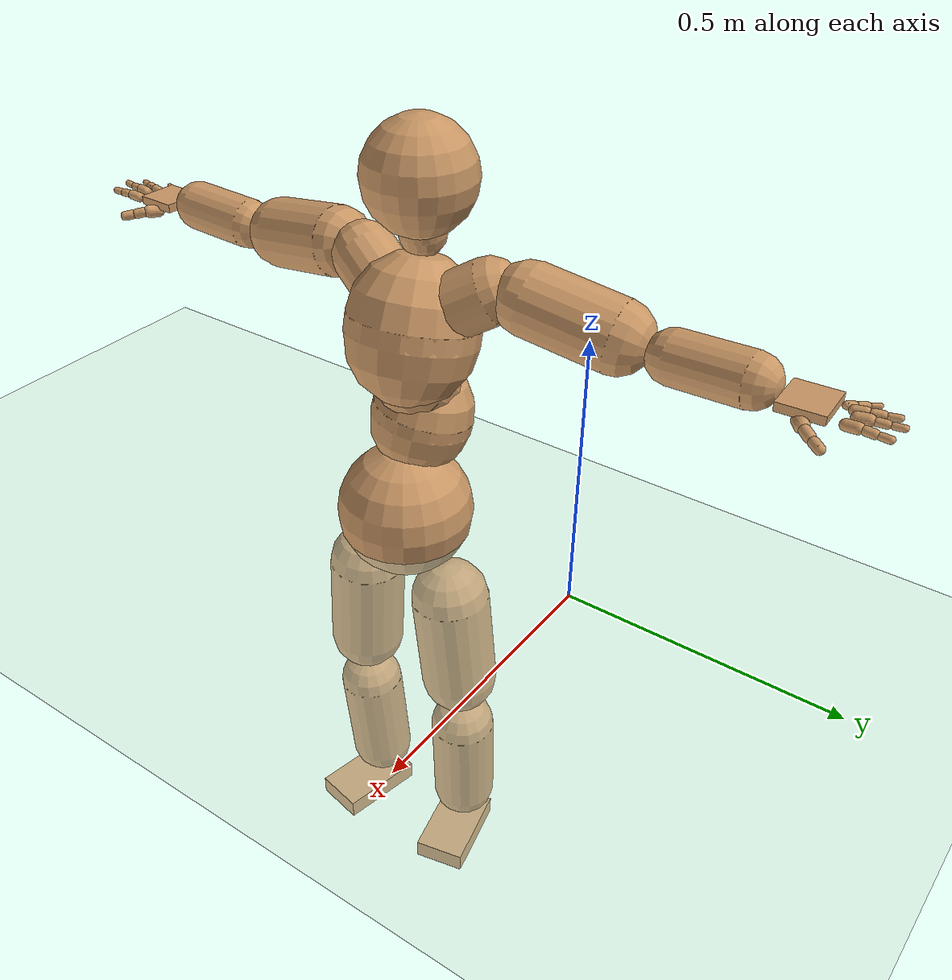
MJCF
<mujoco model="humanoid">
  <compiler coordinate="local" angle="radian"/>
  <default>
    <joint damping="0.0" armature="0.01" stiffness="0.0" limited="true"/>
    <geom conaffinity="1" condim="3" contype="7" margin="0.001" rgba="0.8 0.6 .4 1"/>
  </default>
  <asset>
    <texture type="skybox" builtin="gradient" rgb1=".4 .5 .6" rgb2="0 0 0" width="100" height="100"/>
    <texture builtin="flat" height="1278" mark="cross" markrgb="1 1 1" name="texgeom" random="0.01" rgb1="0.8 0.6 0.4" rgb2="0.8 0.6 0.4" type="cube" width="127"/>
    <texture builtin="checker" height="100" name="texplane" rgb1="0 0 0" rgb2="0.8 0.8 0.8" type="2d" width="100"/>
    <material name="MatPlane" reflectance="0.5" shininess="1" specular="1" texrepeat="60 60" texture="texplane"/>
    <material name="geom" texture="texgeom" texuniform="true"/>
  </asset>
  <worldbody>
    <light cutoff="100" diffuse="1 1 1" dir="-0 0 -1.3" directional="true" exponent="1" pos="0 0 1.3" specular=".1 .1 .1"/>
    <geom conaffinity="1" condim="3" name="floor" pos="0 0 0" rgba="0.8 0.9 0.8 1" size="100 100 .2" type="plane" material="MatPlane"/>
    <body name="Pelvis" pos="0.0011 -0.3627 0.04">
      <freejoint name="Pelvis"/>
      <geom type="sphere" contype="1" conaffinity="1" density="500" size="0.1290" pos="0.0000 0.0000 0.0000" name="Pelvis"/>
      <body name="L_Hip" pos="0.0027 0.0979 -0.0989">
        <joint name="L_Hip_x" type="hinge" pos="0 0 0" axis="1 0 0" stiffness="800" damping="80" armature="0.02" range="-180.0000 180.0000"/>
        <joint name="L_Hip_y" type="hinge" pos="0 0 0" axis="0 1 0" stiffness="800" damping="80" armature="0.02" range="-180.0000 180.0000"/>
        <joint name="L_Hip_z" type="hinge" pos="0 0 0" axis="0 0 1" stiffness="800" damping="80" armature="0.02" range="-180.0000 180.0000"/>
        <geom type="capsule" contype="1" conaffinity="1" density="500" fromto="-0.0038 0.0047 -0.0705 -0.0154 0.0189 -0.2820" size="0.0758" name="L_Hip"/>
        <body name="L_Knee" pos="-0.0192 0.0236 -0.3525">
          <joint name="L_Knee_x" type="hinge" pos="0 0 0" axis="1 0 0" stiffness="800" damping="80" armature="0.02" range="-180.0000 180.0000"/>
          <joint name="L_Knee_y" type="hinge" pos="0 0 0" axis="0 1 0" stiffness="800" damping="80" armature="0.02" range="-180.0000 180.0000"/>
          <joint name="L_Knee_z" type="hinge" pos="0 0 0" axis="0 0 1" stiffness="800" damping="80" armature="0.02" range="-180.0000 180.0000"/>
          <geom type="capsule" contype="1" conaffinity="1" density="500" fromto="-0.0066 -0.0029 -0.0749 -0.0262 -0.0116 -0.2996" size="0.0657" name="L_Knee"/>
          <body name="L_Ankle" pos="-0.0328 -0.0145 -0.3746">
            <joint name="L_Ankle_x" type="hinge" pos="0 0 0" axis="1 0 0" stiffness="800" damping="80" armature="0.02" range="-180.0000 180.0000"/>
            <joint name="L_Ankle_y" type="hinge" pos="0 0 0" axis="0 1 0" stiffness="800" damping="80" armature="0.02" range="-180.0000 180.0000"/>
            <joint name="L_Ankle_z" type="hinge" pos="0 0 0" axis="0 0 1" stiffness="800" damping="80" armature="0.02" range="-180.0000 180.0000"/>
            <geom type="box" contype="1" conaffinity="1" density="500" pos="0.0553 0.0126 -0.0195" size="0.0896 0.052 0.0208" quat="0.9937 0.0000 0.0000 0.1119" name="L_Ankle"/>
            <body name="L_Toe" pos="0.1106 0.0252 -0.039">
              <joint name="L_Toe_x" type="hinge" pos="0 0 0" axis="1 0 0" stiffness="500" damping="50" armature="0.02" range="-180.0000 180.0000"/>
              <joint name="L_Toe_y" type="hinge" pos="0 0 0" axis="0 1 0" stiffness="500" damping="50" armature="0.02" range="-180.0000 180.0000"/>
              <joint name="L_Toe_z" type="hinge" pos="0 0 0" axis="0 0 1" stiffness="500" damping="50" armature="0.02" range="-180.0000 180.0000"/>
              <geom type="box" contype="1" conaffinity="1" density="500" pos="0.0000 0.0000 0.0206" size="0.001 0.0025 0.0011" quat="0.9930 0.0000 0.0000 0.1183" name="L_Toe"/>
            </body>
          </body>
        </body>
      </body>
      <body name="R_Hip" pos="0.0016 -0.0973 -0.1044">
        <joint name="R_Hip_x" type="hinge" pos="0 0 0" axis="1 0 0" stiffness="800" damping="80" armature="0.02" range="-180.0000 180.0000"/>
        <joint name="R_Hip_y" type="hinge" pos="0 0 0" axis="0 1 0" stiffness="800" damping="80" armature="0.02" range="-180.0000 180.0000"/>
        <joint name="R_Hip_z" type="hinge" pos="0 0 0" axis="0 0 1" stiffness="800" damping="80" armature="0.02" range="-180.0000 180.0000"/>
        <geom type="capsule" contype="1" conaffinity="1" density="500" fromto="-0.0023 -0.0058 -0.0699 -0.0092 -0.0232 -0.2794" size="0.0756" name="R_Hip"/>
        <body name="R_Knee" pos="-0.0116 -0.029 -0.3493">
          <joint name="R_Knee_x" type="hinge" pos="0 0 0" axis="1 0 0" stiffness="800" damping="80" armature="0.02" range="-180.0000 180.0000"/>
          <joint name="R_Knee_y" type="hinge" pos="0 0 0" axis="0 1 0" stiffness="800" damping="80" armature="0.02" range="-180.0000 180.0000"/>
          <joint name="R_Knee_z" type="hinge" pos="0 0 0" axis="0 0 1" stiffness="800" damping="80" armature="0.02" range="-180.0000 180.0000"/>
          <geom type="capsule" contype="1" conaffinity="1" density="500" fromto="-0.0061 0.0018 -0.0731 -0.0244 0.0072 -0.2924" size="0.0657" name="R_Knee"/>
          <body name="R_Ankle" pos="-0.0305 0.009 -0.3655">
            <joint name="R_Ankle_x" type="hinge" pos="0 0 0" axis="1 0 0" stiffness="800" damping="80" armature="0.02" range="-180.0000 180.0000"/>
            <joint name="R_Ankle_y" type="hinge" pos="0 0 0" axis="0 1 0" stiffness="800" damping="80" armature="0.02" range="-180.0000 180.0000"/>
            <joint name="R_Ankle_z" type="hinge" pos="0 0 0" axis="0 0 1" stiffness="800" damping="80" armature="0.02" range="-180.0000 180.0000"/>
            <geom type="box" contype="1" conaffinity="1" density="500" pos="0.0524 -0.0103 -0.0209" size="0.0896 0.052 0.0208" quat="0.9953 0.0000 0.0000 -0.0968" name="R_Ankle"/>
            <body name="R_Toe" pos="0.1049 -0.0206 -0.0419">
              <joint name="R_Toe_x" type="hinge" pos="0 0 0" axis="1 0 0" stiffness="500" damping="50" armature="0.02" range="-180.0000 180.0000"/>
              <joint name="R_Toe_y" type="hinge" pos="0 0 0" axis="0 1 0" stiffness="500" damping="50" armature="0.02" range="-180.0000 180.0000"/>
              <joint name="R_Toe_z" type="hinge" pos="0 0 0" axis="0 0 1" stiffness="500" damping="50" armature="0.02" range="-180.0000 180.0000"/>
              <geom type="box" contype="1" conaffinity="1" density="500" pos="0.0000 0.0000 0.0220" size="0.001 0.0025 0.0011" quat="0.9963 0.0000 0.0000 -0.0860" name="R_Toe"/>
            </body>
          </body>
        </body>
      </body>
      <body name="Torso" pos="-0.0405 -0.0074 0.1188">
        <joint name="Torso_x" type="hinge" pos="0 0 0" axis="1 0 0" stiffness="1000" damping="100" armature="0.02" range="-180.0000 180.0000"/>
        <joint name="Torso_y" type="hinge" pos="0 0 0" axis="0 1 0" stiffness="1000" damping="100" armature="0.02" range="-180.0000 180.0000"/>
        <joint name="Torso_z" type="hinge" pos="0 0 0" axis="0 0 1" stiffness="1000" damping="100" armature="0.02" range="-180.0000 180.0000"/>
        <geom type="capsule" contype="1" conaffinity="1" density="500" fromto="-0.0163 0.0099 0.0694 -0.0109 0.0066 0.0463" size="0.0945" name="Torso"/>
        <body name="Spine" pos="-0.0271 0.0164 0.1156">
          <joint name="Spine_x" type="hinge" pos="0 0 0" axis="1 0 0" stiffness="1000" damping="100" armature="0.02" range="-180.0000 180.0000"/>
          <joint name="Spine_y" type="hinge" pos="0 0 0" axis="0 1 0" stiffness="1000" damping="100" armature="0.02" range="-180.0000 180.0000"/>
          <joint name="Spine_z" type="hinge" pos="0 0 0" axis="0 0 1" stiffness="1000" damping="100" armature="0.02" range="-180.0000 180.0000"/>
          <geom type="capsule" contype="1" conaffinity="1" density="500" fromto="0.0317 -0.0059 0.0263 0.0211 -0.0039 0.0175" size="0.0747" name="Spine"/>
          <body name="Chest" pos="0.0528 -0.0098 0.0438">
            <joint name="Chest_x" type="hinge" pos="0 0 0" axis="1 0 0" stiffness="1000" damping="100" armature="0.02" range="-180.0000 180.0000"/>
            <joint name="Chest_y" type="hinge" pos="0 0 0" axis="0 1 0" stiffness="1000" damping="100" armature="0.02" range="-180.0000 180.0000"/>
            <joint name="Chest_z" type="hinge" pos="0 0 0" axis="0 0 1" stiffness="1000" damping="100" armature="0.02" range="-180.0000 180.0000"/>
            <geom type="capsule" contype="1" conaffinity="1" density="500" fromto="-0.0262 -0.0020 0.0929 -0.0175 -0.0013 0.0619" size="0.1204" name="Chest"/>
            <body name="Neck" pos="-0.0629 -0.0068 0.2142">
              <joint name="Neck_x" type="hinge" pos="0 0 0" axis="1 0 0" stiffness="500" damping="50" armature="0.02" range="-180.0000 180.0000"/>
              <joint name="Neck_y" type="hinge" pos="0 0 0" axis="0 1 0" stiffness="500" damping="50" armature="0.02" range="-180.0000 180.0000"/>
              <joint name="Neck_z" type="hinge" pos="0 0 0" axis="0 0 1" stiffness="500" damping="50" armature="0.02" range="-180.0000 180.0000"/>
              <geom type="capsule" contype="1" conaffinity="1" density="500" fromto="0.0041 0.0019 0.0252 0.0165 0.0077 0.1009" size="0.0424" name="Neck"/>
              <body name="Head" pos="0.0207 0.0096 0.1261">
                <joint name="Head_x" type="hinge" pos="0 0 0" axis="1 0 0" stiffness="500" damping="50" armature="0.02" range="-180.0000 180.0000"/>
                <joint name="Head_y" type="hinge" pos="0 0 0" axis="0 1 0" stiffness="500" damping="50" armature="0.02" range="-180.0000 180.0000"/>
                <joint name="Head_z" type="hinge" pos="0 0 0" axis="0 0 1" stiffness="500" damping="50" armature="0.02" range="-180.0000 180.0000"/>
                <geom type="sphere" contype="1" conaffinity="1" density="500" size="0.0994" pos="0.0000 0.0000 0.0000" name="Head"/>
              </body>
            </body>
            <body name="L_Thorax" pos="-0.0297 0.0576 0.1271">
              <joint name="L_Thorax_x" type="hinge" pos="0 0 0" axis="1 0 0" stiffness="500" damping="50" armature="0.02" range="-180.0000 180.0000"/>
              <joint name="L_Thorax_y" type="hinge" pos="0 0 0" axis="0 1 0" stiffness="500" damping="50" armature="0.02" range="-180.0000 180.0000"/>
              <joint name="L_Thorax_z" type="hinge" pos="0 0 0" axis="0 0 1" stiffness="500" damping="50" armature="0.02" range="-180.0000 180.0000"/>
              <geom type="capsule" contype="1" conaffinity="1" density="500" fromto="-0.0081 0.0177 0.0102 -0.0324 0.0706 0.0409" size="0.0585" name="L_Thorax"/>
              <body name="L_Shoulder" pos="-0.0405 0.0883 0.0511">
                <joint name="L_Shoulder_x" type="hinge" pos="0 0 0" axis="1 0 0" stiffness="500" damping="50" armature="0.02" range="-180.0000 180.0000"/>
                <joint name="L_Shoulder_y" type="hinge" pos="0 0 0" axis="0 1 0" stiffness="500" damping="50" armature="0.02" range="-180.0000 180.0000"/>
                <joint name="L_Shoulder_z" type="hinge" pos="0 0 0" axis="0 0 1" stiffness="500" damping="50" armature="0.02" range="-180.0000 180.0000"/>
                <geom type="capsule" contype="1" conaffinity="1" density="500" fromto="-0.0065 0.0518 -0.0095 -0.0260 0.2070 -0.0380" size="0.0638" name="L_Shoulder"/>
                <body name="L_Elbow" pos="-0.0325 0.2588 -0.0475">
                  <joint name="L_Elbow_x" type="hinge" pos="0 0 0" axis="1 0 0" stiffness="500" damping="50" armature="0.02" range="-720.0000 720.0000"/>
                  <joint name="L_Elbow_y" type="hinge" pos="0 0 0" axis="0 1 0" stiffness="500" damping="50" armature="0.02" range="-720.0000 720.0000"/>
                  <joint name="L_Elbow_z" type="hinge" pos="0 0 0" axis="0 0 1" stiffness="500" damping="50" armature="0.02" range="-720.0000 720.0000"/>
                  <geom type="capsule" contype="1" conaffinity="1" density="500" fromto="0.0014 0.0448 0.0019 0.0056 0.1791 0.0078" size="0.0464" name="L_Elbow"/>
                  <body name="L_Wrist" pos="0.007 0.2239 0.0097">
                    <joint name="L_Wrist_x" type="hinge" pos="0 0 0" axis="1 0 0" stiffness="300" damping="30" armature="0.02" range="-180.0000 180.0000"/>
                    <joint name="L_Wrist_y" type="hinge" pos="0 0 0" axis="0 1 0" stiffness="300" damping="30" armature="0.02" range="-180.0000 180.0000"/>
                    <joint name="L_Wrist_z" type="hinge" pos="0 0 0" axis="0 0 1" stiffness="300" damping="30" armature="0.02" range="-180.0000 180.0000"/>
                    <geom type="box" contype="1" conaffinity="1" density="500" pos="-0.0023 0.0433 -0.0081" size="0.0395 0.0419 0.0079" quat="0.7259 0.0000 0.0000 -0.6878" name="L_Wrist"/>
                    <body name="L_Index1" pos="0.0205 0.1019 -0.0133">
                      <joint name="L_Index1_x" type="hinge" pos="0 0 0" axis="1 0 0" stiffness="100" damping="10" armature="0.02" range="-180.0000 180.0000"/>
                      <joint name="L_Index1_y" type="hinge" pos="0 0 0" axis="0 1 0" stiffness="100" damping="10" armature="0.02" range="-180.0000 180.0000"/>
                      <joint name="L_Index1_z" type="hinge" pos="0 0 0" axis="0 0 1" stiffness="100" damping="10" armature="0.02" range="-180.0000 180.0000"/>
                      <geom type="capsule" contype="1" conaffinity="1" density="500" fromto="0.0005 0.0063 0.0006 0.0022 0.0253 0.0025" size="0.0094" name="L_Index1"/>
                      <body name="L_Index2" pos="0.0027 0.0316 0.0031">
                        <joint name="L_Index2_x" type="hinge" pos="0 0 0" axis="1 0 0" stiffness="100" damping="10" armature="0.02" range="-180.0000 180.0000"/>
                        <joint name="L_Index2_y" type="hinge" pos="0 0 0" axis="0 1 0" stiffness="100" damping="10" armature="0.02" range="-180.0000 180.0000"/>
                        <joint name="L_Index2_z" type="hinge" pos="0 0 0" axis="0 0 1" stiffness="100" damping="10" armature="0.02" range="-180.0000 180.0000"/>
                        <geom type="capsule" contype="1" conaffinity="1" density="500" fromto="0.0001 0.0044 -0.0003 0.0002 0.0178 -0.0011" size="0.0077" name="L_Index2"/>
                        <body name="L_Index3" pos="0.0003 0.0222 -0.0013">
                          <joint name="L_Index3_x" type="hinge" pos="0 0 0" axis="1 0 0" stiffness="100" damping="10" armature="0.02" range="-180.0000 180.0000"/>
                          <joint name="L_Index3_y" type="hinge" pos="0 0 0" axis="0 1 0" stiffness="100" damping="10" armature="0.02" range="-180.0000 180.0000"/>
                          <joint name="L_Index3_z" type="hinge" pos="0 0 0" axis="0 0 1" stiffness="100" damping="10" armature="0.02" range="-180.0000 180.0000"/>
                          <geom type="capsule" contype="1" conaffinity="1" density="500" fromto="0.0005 0.0048 0.0001 0.0018 0.0194 0.0005" size="0.0063" name="L_Index3"/>
                        </body>
                      </body>
                    </body>
                    <body name="L_Middle1" pos="-0.0028 0.109 -0.0108">
                      <joint name="L_Middle1_x" type="hinge" pos="0 0 0" axis="1 0 0" stiffness="100" damping="10" armature="0.02" range="-180.0000 180.0000"/>
                      <joint name="L_Middle1_y" type="hinge" pos="0 0 0" axis="0 1 0" stiffness="100" damping="10" armature="0.02" range="-180.0000 180.0000"/>
                      <joint name="L_Middle1_z" type="hinge" pos="0 0 0" axis="0 0 1" stiffness="100" damping="10" armature="0.02" range="-180.0000 180.0000"/>
                      <geom type="capsule" contype="1" conaffinity="1" density="500" fromto="-0.0007 0.0060 0.0004 -0.0030 0.0239 0.0014" size="0.0098" name="L_Middle1"/>
                      <body name="L_Middle2" pos="-0.0037 0.0299 0.0018">
                        <joint name="L_Middle2_x" type="hinge" pos="0 0 0" axis="1 0 0" stiffness="100" damping="10" armature="0.02" range="-180.0000 180.0000"/>
                        <joint name="L_Middle2_y" type="hinge" pos="0 0 0" axis="0 1 0" stiffness="100" damping="10" armature="0.02" range="-180.0000 180.0000"/>
                        <joint name="L_Middle2_z" type="hinge" pos="0 0 0" axis="0 0 1" stiffness="100" damping="10" armature="0.02" range="-180.0000 180.0000"/>
                        <geom type="capsule" contype="1" conaffinity="1" density="500" fromto="-0.0007 0.0046 -0.0001 -0.0029 0.0183 -0.0005" size="0.007" name="L_Middle2"/>
                        <body name="L_Middle3" pos="-0.0037 0.0229 -0.0006">
                          <joint name="L_Middle3_x" type="hinge" pos="0 0 0" axis="1 0 0" stiffness="100" damping="10" armature="0.02" range="-180.0000 180.0000"/>
                          <joint name="L_Middle3_y" type="hinge" pos="0 0 0" axis="0 1 0" stiffness="100" damping="10" armature="0.02" range="-180.0000 180.0000"/>
                          <joint name="L_Middle3_z" type="hinge" pos="0 0 0" axis="0 0 1" stiffness="100" damping="10" armature="0.02" range="-180.0000 180.0000"/>
                          <geom type="capsule" contype="1" conaffinity="1" density="500" fromto="-0.0003 0.0050 0.0003 -0.0013 0.0199 0.0011" size="0.0057" name="L_Middle3"/>
                        </body>
                      </body>
                    </body>
                    <body name="L_Pinky1" pos="-0.042 0.0836 -0.0196">
                      <joint name="L_Pinky1_x" type="hinge" pos="0 0 0" axis="1 0 0" stiffness="100" damping="10" armature="0.02" range="-180.0000 180.0000"/>
                      <joint name="L_Pinky1_y" type="hinge" pos="0 0 0" axis="0 1 0" stiffness="100" damping="10" armature="0.02" range="-180.0000 180.0000"/>
                      <joint name="L_Pinky1_z" type="hinge" pos="0 0 0" axis="0 0 1" stiffness="100" damping="10" armature="0.02" range="-180.0000 180.0000"/>
                      <geom type="capsule" contype="1" conaffinity="1" density="500" fromto="-0.0024 0.0030 -0.0001 -0.0095 0.0118 -0.0005" size="0.0068" name="L_Pinky1"/>
                      <body name="L_Pinky2" pos="-0.0119 0.0148 -0.0007">
                        <joint name="L_Pinky2_x" type="hinge" pos="0 0 0" axis="1 0 0" stiffness="100" damping="10" armature="0.02" range="-180.0000 180.0000"/>
                        <joint name="L_Pinky2_y" type="hinge" pos="0 0 0" axis="0 1 0" stiffness="100" damping="10" armature="0.02" range="-180.0000 180.0000"/>
                        <joint name="L_Pinky2_z" type="hinge" pos="0 0 0" axis="0 0 1" stiffness="100" damping="10" armature="0.02" range="-180.0000 180.0000"/>
                        <geom type="capsule" contype="1" conaffinity="1" density="500" fromto="-0.0023 0.0030 -0.0002 -0.0091 0.0120 -0.0010" size="0.0067" name="L_Pinky2"/>
                        <body name="L_Pinky3" pos="-0.0113 0.015 -0.0012">
                          <joint name="L_Pinky3_x" type="hinge" pos="0 0 0" axis="1 0 0" stiffness="100" damping="10" armature="0.02" range="-180.0000 180.0000"/>
                          <joint name="L_Pinky3_y" type="hinge" pos="0 0 0" axis="0 1 0" stiffness="100" damping="10" armature="0.02" range="-180.0000 180.0000"/>
                          <joint name="L_Pinky3_z" type="hinge" pos="0 0 0" axis="0 0 1" stiffness="100" damping="10" armature="0.02" range="-180.0000 180.0000"/>
                          <geom type="capsule" contype="1" conaffinity="1" density="500" fromto="-0.0019 0.0034 0.0002 -0.0075 0.0136 0.0006" size="0.0049" name="L_Pinky3"/>
                        </body>
                      </body>
                    </body>
                    <body name="L_Ring1" pos="-0.0263 0.0969 -0.0141">
                      <joint name="L_Ring1_x" type="hinge" pos="0 0 0" axis="1 0 0" stiffness="100" damping="10" armature="0.02" range="-180.0000 180.0000"/>
                      <joint name="L_Ring1_y" type="hinge" pos="0 0 0" axis="0 1 0" stiffness="100" damping="10" armature="0.02" range="-180.0000 180.0000"/>
                      <joint name="L_Ring1_z" type="hinge" pos="0 0 0" axis="0 0 1" stiffness="100" damping="10" armature="0.02" range="-180.0000 180.0000"/>
                      <geom type="capsule" contype="1" conaffinity="1" density="500" fromto="-0.0011 0.0055 0.0003 -0.0043 0.0218 0.0013" size="0.0083" name="L_Ring1"/>
                      <body name="L_Ring2" pos="-0.0054 0.0273 0.0016">
                        <joint name="L_Ring2_x" type="hinge" pos="0 0 0" axis="1 0 0" stiffness="100" damping="10" armature="0.02" range="-180.0000 180.0000"/>
                        <joint name="L_Ring2_y" type="hinge" pos="0 0 0" axis="0 1 0" stiffness="100" damping="10" armature="0.02" range="-180.0000 180.0000"/>
                        <joint name="L_Ring2_z" type="hinge" pos="0 0 0" axis="0 0 1" stiffness="100" damping="10" armature="0.02" range="-180.0000 180.0000"/>
                        <geom type="capsule" contype="1" conaffinity="1" density="500" fromto="-0.0014 0.0044 -0.0002 -0.0057 0.0177 -0.0009" size="0.0074" name="L_Ring2"/>
                        <body name="L_Ring3" pos="-0.0072 0.0221 -0.0012">
                          <joint name="L_Ring3_x" type="hinge" pos="0 0 0" axis="1 0 0" stiffness="100" damping="10" armature="0.02" range="-180.0000 180.0000"/>
                          <joint name="L_Ring3_y" type="hinge" pos="0 0 0" axis="0 1 0" stiffness="100" damping="10" armature="0.02" range="-180.0000 180.0000"/>
                          <joint name="L_Ring3_z" type="hinge" pos="0 0 0" axis="0 0 1" stiffness="100" damping="10" armature="0.02" range="-180.0000 180.0000"/>
                          <geom type="capsule" contype="1" conaffinity="1" density="500" fromto="-0.0010 0.0048 0.0002 -0.0041 0.0193 0.0007" size="0.0056" name="L_Ring3"/>
                        </body>
                      </body>
                    </body>
                    <body name="L_Thumb1" pos="0.0273 0.0413 -0.0227">
                      <joint name="L_Thumb1_x" type="hinge" pos="0 0 0" axis="1 0 0" stiffness="100" damping="10" armature="0.02" range="-180.0000 180.0000"/>
                      <joint name="L_Thumb1_y" type="hinge" pos="0 0 0" axis="0 1 0" stiffness="100" damping="10" armature="0.02" range="-180.0000 180.0000"/>
                      <joint name="L_Thumb1_z" type="hinge" pos="0 0 0" axis="0 0 1" stiffness="100" damping="10" armature="0.02" range="-180.0000 180.0000"/>
                      <geom type="capsule" contype="1" conaffinity="1" density="500" fromto="0.0047 0.0033 0.0003 0.0188 0.0133 0.0013" size="0.0122" name="L_Thumb1"/>
                      <body name="L_Thumb2" pos="0.0235 0.0166 0.0017">
                        <joint name="L_Thumb2_x" type="hinge" pos="0 0 0" axis="1 0 0" stiffness="100" damping="10" armature="0.02" range="-180.0000 180.0000"/>
                        <joint name="L_Thumb2_y" type="hinge" pos="0 0 0" axis="0 1 0" stiffness="100" damping="10" armature="0.02" range="-180.0000 180.0000"/>
                        <joint name="L_Thumb2_z" type="hinge" pos="0 0 0" axis="0 0 1" stiffness="100" damping="10" armature="0.02" range="-180.0000 180.0000"/>
                        <geom type="capsule" contype="1" conaffinity="1" density="500" fromto="0.0028 0.0040 -0.0011 0.0113 0.0159 -0.0045" size="0.0095" name="L_Thumb2"/>
                        <body name="L_Thumb3" pos="0.0141 0.0199 -0.0056">
                          <joint name="L_Thumb3_x" type="hinge" pos="0 0 0" axis="1 0 0" stiffness="100" damping="10" armature="0.02" range="-180.0000 180.0000"/>
                          <joint name="L_Thumb3_y" type="hinge" pos="0 0 0" axis="0 1 0" stiffness="100" damping="10" armature="0.02" range="-180.0000 180.0000"/>
                          <joint name="L_Thumb3_z" type="hinge" pos="0 0 0" axis="0 0 1" stiffness="100" damping="10" armature="0.02" range="-180.0000 180.0000"/>
                          <geom type="capsule" contype="1" conaffinity="1" density="500" fromto="0.0032 0.0044 -0.0007 0.0129 0.0175 -0.0029" size="0.0088" name="L_Thumb3"/>
                        </body>
                      </body>
                    </body>
                  </body>
                </body>
              </body>
            </body>
            <body name="R_Thorax" pos="-0.0384 -0.0606 0.123">
              <joint name="R_Thorax_x" type="hinge" pos="0 0 0" axis="1 0 0" stiffness="500" damping="50" armature="0.02" range="-180.0000 180.0000"/>
              <joint name="R_Thorax_y" type="hinge" pos="0 0 0" axis="0 1 0" stiffness="500" damping="50" armature="0.02" range="-180.0000 180.0000"/>
              <joint name="R_Thorax_z" type="hinge" pos="0 0 0" axis="0 0 1" stiffness="500" damping="50" armature="0.02" range="-180.0000 180.0000"/>
              <geom type="capsule" contype="1" conaffinity="1" density="500" fromto="-0.0062 -0.0192 0.0105 -0.0249 -0.0766 0.0420" size="0.06" name="R_Thorax"/>
              <body name="R_Shoulder" pos="-0.0311 -0.0958 0.0526">
                <joint name="R_Shoulder_x" type="hinge" pos="0 0 0" axis="1 0 0" stiffness="500" damping="50" armature="0.02" range="-180.0000 180.0000"/>
                <joint name="R_Shoulder_y" type="hinge" pos="0 0 0" axis="0 1 0" stiffness="500" damping="50" armature="0.02" range="-180.0000 180.0000"/>
                <joint name="R_Shoulder_z" type="hinge" pos="0 0 0" axis="0 0 1" stiffness="500" damping="50" armature="0.02" range="-180.0000 180.0000"/>
                <geom type="capsule" contype="1" conaffinity="1" density="500" fromto="-0.0051 -0.0501 -0.0085 -0.0203 -0.2005 -0.0338" size="0.0643" name="R_Shoulder"/>
                <body name="R_Elbow" pos="-0.0254 -0.2506 -0.0423">
                  <joint name="R_Elbow_x" type="hinge" pos="0 0 0" axis="1 0 0" stiffness="500" damping="50" armature="0.02" range="-720.0000 720.0000"/>
                  <joint name="R_Elbow_y" type="hinge" pos="0 0 0" axis="0 1 0" stiffness="500" damping="50" armature="0.02" range="-720.0000 720.0000"/>
                  <joint name="R_Elbow_z" type="hinge" pos="0 0 0" axis="0 0 1" stiffness="500" damping="50" armature="0.02" range="-720.0000 720.0000"/>
                  <geom type="capsule" contype="1" conaffinity="1" density="500" fromto="-0.0006 -0.0447 0.0012 -0.0022 -0.1789 0.0049" size="0.0465" name="R_Elbow"/>
                  <body name="R_Wrist" pos="-0.0028 -0.2236 0.0061">
                    <joint name="R_Wrist_x" type="hinge" pos="0 0 0" axis="1 0 0" stiffness="300" damping="30" armature="0.02" range="-180.0000 180.0000"/>
                    <joint name="R_Wrist_y" type="hinge" pos="0 0 0" axis="0 1 0" stiffness="300" damping="30" armature="0.02" range="-180.0000 180.0000"/>
                    <joint name="R_Wrist_z" type="hinge" pos="0 0 0" axis="0 0 1" stiffness="300" damping="30" armature="0.02" range="-180.0000 180.0000"/>
                    <geom type="box" contype="1" conaffinity="1" density="500" pos="-0.0014 -0.0427 -0.0075" size="0.0395 0.0393 0.0081" quat="0.7183 0.0000 0.0000 0.6958" name="R_Wrist"/>
                    <body name="R_Index1" pos="0.0225 -0.1007 -0.0122">
                      <joint name="R_Index1_x" type="hinge" pos="0 0 0" axis="1 0 0" stiffness="100" damping="10" armature="0.02" range="-180.0000 180.0000"/>
                      <joint name="R_Index1_y" type="hinge" pos="0 0 0" axis="0 1 0" stiffness="100" damping="10" armature="0.02" range="-180.0000 180.0000"/>
                      <joint name="R_Index1_z" type="hinge" pos="0 0 0" axis="0 0 1" stiffness="100" damping="10" armature="0.02" range="-180.0000 180.0000"/>
                      <geom type="capsule" contype="1" conaffinity="1" density="500" fromto="0.0005 -0.0063 0.0006 0.0022 -0.0253 0.0025" size="0.0094" name="R_Index1"/>
                      <body name="R_Index2" pos="0.0027 -0.0316 0.0031">
                        <joint name="R_Index2_x" type="hinge" pos="0 0 0" axis="1 0 0" stiffness="100" damping="10" armature="0.02" range="-180.0000 180.0000"/>
                        <joint name="R_Index2_y" type="hinge" pos="0 0 0" axis="0 1 0" stiffness="100" damping="10" armature="0.02" range="-180.0000 180.0000"/>
                        <joint name="R_Index2_z" type="hinge" pos="0 0 0" axis="0 0 1" stiffness="100" damping="10" armature="0.02" range="-180.0000 180.0000"/>
                        <geom type="capsule" contype="1" conaffinity="1" density="500" fromto="0.0001 -0.0044 -0.0003 0.0002 -0.0178 -0.0011" size="0.0077" name="R_Index2"/>
                        <body name="R_Index3" pos="0.0003 -0.0222 -0.0013">
                          <joint name="R_Index3_x" type="hinge" pos="0 0 0" axis="1 0 0" stiffness="100" damping="10" armature="0.02" range="-180.0000 180.0000"/>
                          <joint name="R_Index3_y" type="hinge" pos="0 0 0" axis="0 1 0" stiffness="100" damping="10" armature="0.02" range="-180.0000 180.0000"/>
                          <joint name="R_Index3_z" type="hinge" pos="0 0 0" axis="0 0 1" stiffness="100" damping="10" armature="0.02" range="-180.0000 180.0000"/>
                          <geom type="capsule" contype="1" conaffinity="1" density="500" fromto="0.0005 -0.0040 0.0001 0.0018 -0.0162 0.0005" size="0.0066" name="R_Index3"/>
                        </body>
                      </body>
                    </body>
                    <body name="R_Middle1" pos="-0.0009 -0.1077 -0.0097">
                      <joint name="R_Middle1_x" type="hinge" pos="0 0 0" axis="1 0 0" stiffness="100" damping="10" armature="0.02" range="-180.0000 180.0000"/>
                      <joint name="R_Middle1_y" type="hinge" pos="0 0 0" axis="0 1 0" stiffness="100" damping="10" armature="0.02" range="-180.0000 180.0000"/>
                      <joint name="R_Middle1_z" type="hinge" pos="0 0 0" axis="0 0 1" stiffness="100" damping="10" armature="0.02" range="-180.0000 180.0000"/>
                      <geom type="capsule" contype="1" conaffinity="1" density="500" fromto="-0.0007 -0.0060 0.0004 -0.0030 -0.0239 0.0014" size="0.0098" name="R_Middle1"/>
                      <body name="R_Middle2" pos="-0.0037 -0.0299 0.0018">
                        <joint name="R_Middle2_x" type="hinge" pos="0 0 0" axis="1 0 0" stiffness="100" damping="10" armature="0.02" range="-180.0000 180.0000"/>
                        <joint name="R_Middle2_y" type="hinge" pos="0 0 0" axis="0 1 0" stiffness="100" damping="10" armature="0.02" range="-180.0000 180.0000"/>
                        <joint name="R_Middle2_z" type="hinge" pos="0 0 0" axis="0 0 1" stiffness="100" damping="10" armature="0.02" range="-180.0000 180.0000"/>
                        <geom type="capsule" contype="1" conaffinity="1" density="500" fromto="-0.0007 -0.0046 -0.0001 -0.0029 -0.0183 -0.0005" size="0.007" name="R_Middle2"/>
                        <body name="R_Middle3" pos="-0.0037 -0.0229 -0.0006">
                          <joint name="R_Middle3_x" type="hinge" pos="0 0 0" axis="1 0 0" stiffness="100" damping="10" armature="0.02" range="-180.0000 180.0000"/>
                          <joint name="R_Middle3_y" type="hinge" pos="0 0 0" axis="0 1 0" stiffness="100" damping="10" armature="0.02" range="-180.0000 180.0000"/>
                          <joint name="R_Middle3_z" type="hinge" pos="0 0 0" axis="0 0 1" stiffness="100" damping="10" armature="0.02" range="-180.0000 180.0000"/>
                          <geom type="capsule" contype="1" conaffinity="1" density="500" fromto="-0.0003 -0.0042 0.0003 -0.0013 -0.0167 0.0011" size="0.006" name="R_Middle3"/>
                        </body>
                      </body>
                    </body>
                    <body name="R_Pinky1" pos="-0.0401 -0.0824 -0.0185">
                      <joint name="R_Pinky1_x" type="hinge" pos="0 0 0" axis="1 0 0" stiffness="100" damping="10" armature="0.02" range="-180.0000 180.0000"/>
                      <joint name="R_Pinky1_y" type="hinge" pos="0 0 0" axis="0 1 0" stiffness="100" damping="10" armature="0.02" range="-180.0000 180.0000"/>
                      <joint name="R_Pinky1_z" type="hinge" pos="0 0 0" axis="0 0 1" stiffness="100" damping="10" armature="0.02" range="-180.0000 180.0000"/>
                      <geom type="capsule" contype="1" conaffinity="1" density="500" fromto="-0.0024 -0.0030 -0.0001 -0.0095 -0.0118 -0.0005" size="0.0068" name="R_Pinky1"/>
                      <body name="R_Pinky2" pos="-0.0119 -0.0148 -0.0007">
                        <joint name="R_Pinky2_x" type="hinge" pos="0 0 0" axis="1 0 0" stiffness="100" damping="10" armature="0.02" range="-180.0000 180.0000"/>
                        <joint name="R_Pinky2_y" type="hinge" pos="0 0 0" axis="0 1 0" stiffness="100" damping="10" armature="0.02" range="-180.0000 180.0000"/>
                        <joint name="R_Pinky2_z" type="hinge" pos="0 0 0" axis="0 0 1" stiffness="100" damping="10" armature="0.02" range="-180.0000 180.0000"/>
                        <geom type="capsule" contype="1" conaffinity="1" density="500" fromto="-0.0023 -0.0030 -0.0002 -0.0091 -0.0120 -0.0010" size="0.0067" name="R_Pinky2"/>
                        <body name="R_Pinky3" pos="-0.0113 -0.015 -0.0012">
                          <joint name="R_Pinky3_x" type="hinge" pos="0 0 0" axis="1 0 0" stiffness="100" damping="10" armature="0.02" range="-180.0000 180.0000"/>
                          <joint name="R_Pinky3_y" type="hinge" pos="0 0 0" axis="0 1 0" stiffness="100" damping="10" armature="0.02" range="-180.0000 180.0000"/>
                          <joint name="R_Pinky3_z" type="hinge" pos="0 0 0" axis="0 0 1" stiffness="100" damping="10" armature="0.02" range="-180.0000 180.0000"/>
                          <geom type="capsule" contype="1" conaffinity="1" density="500" fromto="-0.0019 -0.0026 0.0002 -0.0075 -0.0104 0.0006" size="0.0052" name="R_Pinky3"/>
                        </body>
                      </body>
                    </body>
                    <body name="R_Ring1" pos="-0.0244 -0.0957 -0.013">
                      <joint name="R_Ring1_x" type="hinge" pos="0 0 0" axis="1 0 0" stiffness="100" damping="10" armature="0.02" range="-180.0000 180.0000"/>
                      <joint name="R_Ring1_y" type="hinge" pos="0 0 0" axis="0 1 0" stiffness="100" damping="10" armature="0.02" range="-180.0000 180.0000"/>
                      <joint name="R_Ring1_z" type="hinge" pos="0 0 0" axis="0 0 1" stiffness="100" damping="10" armature="0.02" range="-180.0000 180.0000"/>
                      <geom type="capsule" contype="1" conaffinity="1" density="500" fromto="-0.0011 -0.0055 0.0003 -0.0043 -0.0218 0.0013" size="0.0083" name="R_Ring1"/>
                      <body name="R_Ring2" pos="-0.0054 -0.0273 0.0017">
                        <joint name="R_Ring2_x" type="hinge" pos="0 0 0" axis="1 0 0" stiffness="100" damping="10" armature="0.02" range="-180.0000 180.0000"/>
                        <joint name="R_Ring2_y" type="hinge" pos="0 0 0" axis="0 1 0" stiffness="100" damping="10" armature="0.02" range="-180.0000 180.0000"/>
                        <joint name="R_Ring2_z" type="hinge" pos="0 0 0" axis="0 0 1" stiffness="100" damping="10" armature="0.02" range="-180.0000 180.0000"/>
                        <geom type="capsule" contype="1" conaffinity="1" density="500" fromto="-0.0014 -0.0044 -0.0002 -0.0057 -0.0177 -0.0009" size="0.0074" name="R_Ring2"/>
                        <body name="R_Ring3" pos="-0.0072 -0.0221 -0.0012">
                          <joint name="R_Ring3_x" type="hinge" pos="0 0 0" axis="1 0 0" stiffness="100" damping="10" armature="0.02" range="-180.0000 180.0000"/>
                          <joint name="R_Ring3_y" type="hinge" pos="0 0 0" axis="0 1 0" stiffness="100" damping="10" armature="0.02" range="-180.0000 180.0000"/>
                          <joint name="R_Ring3_z" type="hinge" pos="0 0 0" axis="0 0 1" stiffness="100" damping="10" armature="0.02" range="-180.0000 180.0000"/>
                          <geom type="capsule" contype="1" conaffinity="1" density="500" fromto="-0.0010 -0.0040 0.0002 -0.0041 -0.0161 0.0007" size="0.0059" name="R_Ring3"/>
                        </body>
                      </body>
                    </body>
                    <body name="R_Thumb1" pos="0.0293 -0.0401 -0.0216">
                      <joint name="R_Thumb1_x" type="hinge" pos="0 0 0" axis="1 0 0" stiffness="100" damping="10" armature="0.02" range="-180.0000 180.0000"/>
                      <joint name="R_Thumb1_y" type="hinge" pos="0 0 0" axis="0 1 0" stiffness="100" damping="10" armature="0.02" range="-180.0000 180.0000"/>
                      <joint name="R_Thumb1_z" type="hinge" pos="0 0 0" axis="0 0 1" stiffness="100" damping="10" armature="0.02" range="-180.0000 180.0000"/>
                      <geom type="capsule" contype="1" conaffinity="1" density="500" fromto="0.0047 -0.0033 0.0003 0.0188 -0.0133 0.0013" size="0.0122" name="R_Thumb1"/>
                      <body name="R_Thumb2" pos="0.0235 -0.0166 0.0017">
                        <joint name="R_Thumb2_x" type="hinge" pos="0 0 0" axis="1 0 0" stiffness="100" damping="10" armature="0.02" range="-180.0000 180.0000"/>
                        <joint name="R_Thumb2_y" type="hinge" pos="0 0 0" axis="0 1 0" stiffness="100" damping="10" armature="0.02" range="-180.0000 180.0000"/>
                        <joint name="R_Thumb2_z" type="hinge" pos="0 0 0" axis="0 0 1" stiffness="100" damping="10" armature="0.02" range="-180.0000 180.0000"/>
                        <geom type="capsule" contype="1" conaffinity="1" density="500" fromto="0.0028 -0.0040 -0.0011 0.0113 -0.0159 -0.0045" size="0.0095" name="R_Thumb2"/>
                        <body name="R_Thumb3" pos="0.0141 -0.0199 -0.0056">
                          <joint name="R_Thumb3_x" type="hinge" pos="0 0 0" axis="1 0 0" stiffness="100" damping="10" armature="0.02" range="-180.0000 180.0000"/>
                          <joint name="R_Thumb3_y" type="hinge" pos="0 0 0" axis="0 1 0" stiffness="100" damping="10" armature="0.02" range="-180.0000 180.0000"/>
                          <joint name="R_Thumb3_z" type="hinge" pos="0 0 0" axis="0 0 1" stiffness="100" damping="10" armature="0.02" range="-180.0000 180.0000"/>
                          <geom type="capsule" contype="1" conaffinity="1" density="500" fromto="0.0032 -0.0036 -0.0007 0.0129 -0.0143 -0.0029" size="0.009" name="R_Thumb3"/>
                        </body>
                      </body>
                    </body>
                  </body>
                </body>
              </body>
            </body>
          </body>
        </body>
      </body>
    </body>
  </worldbody>
  <actuator>
    <motor name="L_Hip_x" joint="L_Hip_x" gear="500"/>
    <motor name="L_Hip_y" joint="L_Hip_y" gear="500"/>
    <motor name="L_Hip_z" joint="L_Hip_z" gear="500"/>
    <motor name="L_Knee_x" joint="L_Knee_x" gear="500"/>
    <motor name="L_Knee_y" joint="L_Knee_y" gear="500"/>
    <motor name="L_Knee_z" joint="L_Knee_z" gear="500"/>
    <motor name="L_Ankle_x" joint="L_Ankle_x" gear="500"/>
    <motor name="L_Ankle_y" joint="L_Ankle_y" gear="500"/>
    <motor name="L_Ankle_z" joint="L_Ankle_z" gear="500"/>
    <motor name="L_Toe_x" joint="L_Toe_x" gear="500"/>
    <motor name="L_Toe_y" joint="L_Toe_y" gear="500"/>
    <motor name="L_Toe_z" joint="L_Toe_z" gear="500"/>
    <motor name="R_Hip_x" joint="R_Hip_x" gear="500"/>
    <motor name="R_Hip_y" joint="R_Hip_y" gear="500"/>
    <motor name="R_Hip_z" joint="R_Hip_z" gear="500"/>
    <motor name="R_Knee_x" joint="R_Knee_x" gear="500"/>
    <motor name="R_Knee_y" joint="R_Knee_y" gear="500"/>
    <motor name="R_Knee_z" joint="R_Knee_z" gear="500"/>
    <motor name="R_Ankle_x" joint="R_Ankle_x" gear="500"/>
    <motor name="R_Ankle_y" joint="R_Ankle_y" gear="500"/>
    <motor name="R_Ankle_z" joint="R_Ankle_z" gear="500"/>
    <motor name="R_Toe_x" joint="R_Toe_x" gear="500"/>
    <motor name="R_Toe_y" joint="R_Toe_y" gear="500"/>
    <motor name="R_Toe_z" joint="R_Toe_z" gear="500"/>
    <motor name="Torso_x" joint="Torso_x" gear="500"/>
    <motor name="Torso_y" joint="Torso_y" gear="500"/>
    <motor name="Torso_z" joint="Torso_z" gear="500"/>
    <motor name="Spine_x" joint="Spine_x" gear="500"/>
    <motor name="Spine_y" joint="Spine_y" gear="500"/>
    <motor name="Spine_z" joint="Spine_z" gear="500"/>
    <motor name="Chest_x" joint="Chest_x" gear="500"/>
    <motor name="Chest_y" joint="Chest_y" gear="500"/>
    <motor name="Chest_z" joint="Chest_z" gear="500"/>
    <motor name="Neck_x" joint="Neck_x" gear="500"/>
    <motor name="Neck_y" joint="Neck_y" gear="500"/>
    <motor name="Neck_z" joint="Neck_z" gear="500"/>
    <motor name="Head_x" joint="Head_x" gear="500"/>
    <motor name="Head_y" joint="Head_y" gear="500"/>
    <motor name="Head_z" joint="Head_z" gear="500"/>
    <motor name="L_Thorax_x" joint="L_Thorax_x" gear="500"/>
    <motor name="L_Thorax_y" joint="L_Thorax_y" gear="500"/>
    <motor name="L_Thorax_z" joint="L_Thorax_z" gear="500"/>
    <motor name="L_Shoulder_x" joint="L_Shoulder_x" gear="500"/>
    <motor name="L_Shoulder_y" joint="L_Shoulder_y" gear="500"/>
    <motor name="L_Shoulder_z" joint="L_Shoulder_z" gear="500"/>
    <motor name="L_Elbow_x" joint="L_Elbow_x" gear="500"/>
    <motor name="L_Elbow_y" joint="L_Elbow_y" gear="500"/>
    <motor name="L_Elbow_z" joint="L_Elbow_z" gear="500"/>
    <motor name="L_Wrist_x" joint="L_Wrist_x" gear="500"/>
    <motor name="L_Wrist_y" joint="L_Wrist_y" gear="500"/>
    <motor name="L_Wrist_z" joint="L_Wrist_z" gear="500"/>
    <motor name="L_Index1_x" joint="L_Index1_x" gear="500"/>
    <motor name="L_Index1_y" joint="L_Index1_y" gear="500"/>
    <motor name="L_Index1_z" joint="L_Index1_z" gear="500"/>
    <motor name="L_Index2_x" joint="L_Index2_x" gear="500"/>
    <motor name="L_Index2_y" joint="L_Index2_y" gear="500"/>
    <motor name="L_Index2_z" joint="L_Index2_z" gear="500"/>
    <motor name="L_Index3_x" joint="L_Index3_x" gear="500"/>
    <motor name="L_Index3_y" joint="L_Index3_y" gear="500"/>
    <motor name="L_Index3_z" joint="L_Index3_z" gear="500"/>
    <motor name="L_Middle1_x" joint="L_Middle1_x" gear="500"/>
    <motor name="L_Middle1_y" joint="L_Middle1_y" gear="500"/>
    <motor name="L_Middle1_z" joint="L_Middle1_z" gear="500"/>
    <motor name="L_Middle2_x" joint="L_Middle2_x" gear="500"/>
    <motor name="L_Middle2_y" joint="L_Middle2_y" gear="500"/>
    <motor name="L_Middle2_z" joint="L_Middle2_z" gear="500"/>
    <motor name="L_Middle3_x" joint="L_Middle3_x" gear="500"/>
    <motor name="L_Middle3_y" joint="L_Middle3_y" gear="500"/>
    <motor name="L_Middle3_z" joint="L_Middle3_z" gear="500"/>
    <motor name="L_Pinky1_x" joint="L_Pinky1_x" gear="500"/>
    <motor name="L_Pinky1_y" joint="L_Pinky1_y" gear="500"/>
    <motor name="L_Pinky1_z" joint="L_Pinky1_z" gear="500"/>
    <motor name="L_Pinky2_x" joint="L_Pinky2_x" gear="500"/>
    <motor name="L_Pinky2_y" joint="L_Pinky2_y" gear="500"/>
    <motor name="L_Pinky2_z" joint="L_Pinky2_z" gear="500"/>
    <motor name="L_Pinky3_x" joint="L_Pinky3_x" gear="500"/>
    <motor name="L_Pinky3_y" joint="L_Pinky3_y" gear="500"/>
    <motor name="L_Pinky3_z" joint="L_Pinky3_z" gear="500"/>
    <motor name="L_Ring1_x" joint="L_Ring1_x" gear="500"/>
    <motor name="L_Ring1_y" joint="L_Ring1_y" gear="500"/>
    <motor name="L_Ring1_z" joint="L_Ring1_z" gear="500"/>
    <motor name="L_Ring2_x" joint="L_Ring2_x" gear="500"/>
    <motor name="L_Ring2_y" joint="L_Ring2_y" gear="500"/>
    <motor name="L_Ring2_z" joint="L_Ring2_z" gear="500"/>
    <motor name="L_Ring3_x" joint="L_Ring3_x" gear="500"/>
    <motor name="L_Ring3_y" joint="L_Ring3_y" gear="500"/>
    <motor name="L_Ring3_z" joint="L_Ring3_z" gear="500"/>
    <motor name="L_Thumb1_x" joint="L_Thumb1_x" gear="500"/>
    <motor name="L_Thumb1_y" joint="L_Thumb1_y" gear="500"/>
    <motor name="L_Thumb1_z" joint="L_Thumb1_z" gear="500"/>
    <motor name="L_Thumb2_x" joint="L_Thumb2_x" gear="500"/>
    <motor name="L_Thumb2_y" joint="L_Thumb2_y" gear="500"/>
    <motor name="L_Thumb2_z" joint="L_Thumb2_z" gear="500"/>
    <motor name="L_Thumb3_x" joint="L_Thumb3_x" gear="500"/>
    <motor name="L_Thumb3_y" joint="L_Thumb3_y" gear="500"/>
    <motor name="L_Thumb3_z" joint="L_Thumb3_z" gear="500"/>
    <motor name="R_Thorax_x" joint="R_Thorax_x" gear="500"/>
    <motor name="R_Thorax_y" joint="R_Thorax_y" gear="500"/>
    <motor name="R_Thorax_z" joint="R_Thorax_z" gear="500"/>
    <motor name="R_Shoulder_x" joint="R_Shoulder_x" gear="500"/>
    <motor name="R_Shoulder_y" joint="R_Shoulder_y" gear="500"/>
    <motor name="R_Shoulder_z" joint="R_Shoulder_z" gear="500"/>
    <motor name="R_Elbow_x" joint="R_Elbow_x" gear="500"/>
    <motor name="R_Elbow_y" joint="R_Elbow_y" gear="500"/>
    <motor name="R_Elbow_z" joint="R_Elbow_z" gear="500"/>
    <motor name="R_Wrist_x" joint="R_Wrist_x" gear="500"/>
    <motor name="R_Wrist_y" joint="R_Wrist_y" gear="500"/>
    <motor name="R_Wrist_z" joint="R_Wrist_z" gear="500"/>
    <motor name="R_Index1_x" joint="R_Index1_x" gear="500"/>
    <motor name="R_Index1_y" joint="R_Index1_y" gear="500"/>
    <motor name="R_Index1_z" joint="R_Index1_z" gear="500"/>
    <motor name="R_Index2_x" joint="R_Index2_x" gear="500"/>
    <motor name="R_Index2_y" joint="R_Index2_y" gear="500"/>
    <motor name="R_Index2_z" joint="R_Index2_z" gear="500"/>
    <motor name="R_Index3_x" joint="R_Index3_x" gear="500"/>
    <motor name="R_Index3_y" joint="R_Index3_y" gear="500"/>
    <motor name="R_Index3_z" joint="R_Index3_z" gear="500"/>
    <motor name="R_Middle1_x" joint="R_Middle1_x" gear="500"/>
    <motor name="R_Middle1_y" joint="R_Middle1_y" gear="500"/>
    <motor name="R_Middle1_z" joint="R_Middle1_z" gear="500"/>
    <motor name="R_Middle2_x" joint="R_Middle2_x" gear="500"/>
    <motor name="R_Middle2_y" joint="R_Middle2_y" gear="500"/>
    <motor name="R_Middle2_z" joint="R_Middle2_z" gear="500"/>
    <motor name="R_Middle3_x" joint="R_Middle3_x" gear="500"/>
    <motor name="R_Middle3_y" joint="R_Middle3_y" gear="500"/>
    <motor name="R_Middle3_z" joint="R_Middle3_z" gear="500"/>
    <motor name="R_Pinky1_x" joint="R_Pinky1_x" gear="500"/>
    <motor name="R_Pinky1_y" joint="R_Pinky1_y" gear="500"/>
    <motor name="R_Pinky1_z" joint="R_Pinky1_z" gear="500"/>
    <motor name="R_Pinky2_x" joint="R_Pinky2_x" gear="500"/>
    <motor name="R_Pinky2_y" joint="R_Pinky2_y" gear="500"/>
    <motor name="R_Pinky2_z" joint="R_Pinky2_z" gear="500"/>
    <motor name="R_Pinky3_x" joint="R_Pinky3_x" gear="500"/>
    <motor name="R_Pinky3_y" joint="R_Pinky3_y" gear="500"/>
    <motor name="R_Pinky3_z" joint="R_Pinky3_z" gear="500"/>
    <motor name="R_Ring1_x" joint="R_Ring1_x" gear="500"/>
    <motor name="R_Ring1_y" joint="R_Ring1_y" gear="500"/>
    <motor name="R_Ring1_z" joint="R_Ring1_z" gear="500"/>
    <motor name="R_Ring2_x" joint="R_Ring2_x" gear="500"/>
    <motor name="R_Ring2_y" joint="R_Ring2_y" gear="500"/>
    <motor name="R_Ring2_z" joint="R_Ring2_z" gear="500"/>
    <motor name="R_Ring3_x" joint="R_Ring3_x" gear="500"/>
    <motor name="R_Ring3_y" joint="R_Ring3_y" gear="500"/>
    <motor name="R_Ring3_z" joint="R_Ring3_z" gear="500"/>
    <motor name="R_Thumb1_x" joint="R_Thumb1_x" gear="500"/>
    <motor name="R_Thumb1_y" joint="R_Thumb1_y" gear="500"/>
    <motor name="R_Thumb1_z" joint="R_Thumb1_z" gear="500"/>
    <motor name="R_Thumb2_x" joint="R_Thumb2_x" gear="500"/>
    <motor name="R_Thumb2_y" joint="R_Thumb2_y" gear="500"/>
    <motor name="R_Thumb2_z" joint="R_Thumb2_z" gear="500"/>
    <motor name="R_Thumb3_x" joint="R_Thumb3_x" gear="500"/>
    <motor name="R_Thumb3_y" joint="R_Thumb3_y" gear="500"/>
    <motor name="R_Thumb3_z" joint="R_Thumb3_z" gear="500"/>
  </actuator>
  <contact>
    <exclude body1="Torso" body2="Chest"/>
    <exclude body1="Head" body2="Chest"/>
    <exclude body1="R_Knee" body2="R_Toe"/>
    <exclude body1="R_Knee" body2="L_Ankle"/>
    <exclude body1="R_Knee" body2="L_Toe"/>
    <exclude body1="L_Knee" body2="L_Toe"/>
    <exclude body1="L_Knee" body2="R_Ankle"/>
    <exclude body1="L_Knee" body2="R_Toe"/>
    <exclude body1="L_Shoulder" body2="Chest"/>
    <exclude body1="R_Shoulder" body2="Chest"/>
  </contact>
  <sensor/>
  <size njmax="700" nconmax="700"/>
</mujoco>
